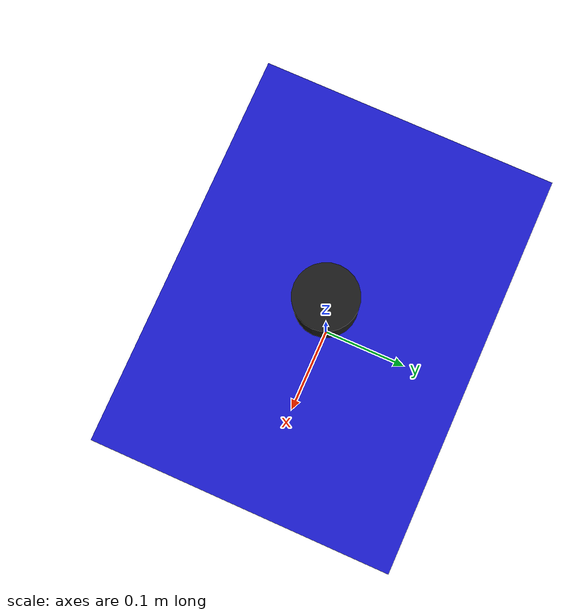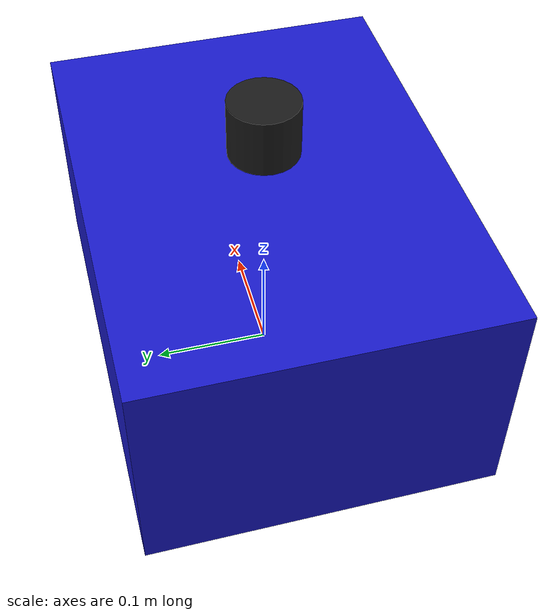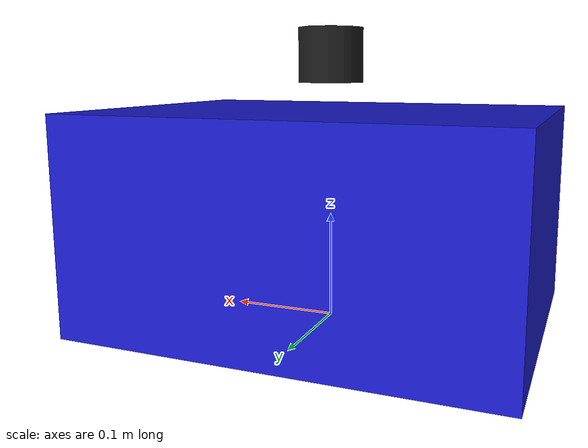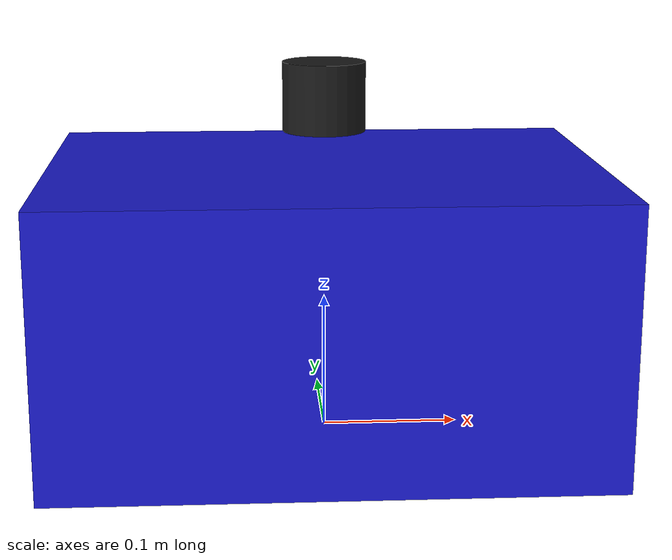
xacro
<?xml version="1.0" encoding="utf-8"?>
<robot name="sentry" xmlns:xacro="http://ros.org/wiki/xacro">

  <xacro:macro name="box_inertia" params="m w h d">
    <inertial>
      <mass value="${m}"/>
      <inertia ixx="${(m/12) * (h*h + d*d)}" ixy="0.0" ixz="0.0"
               iyy="${(m/12) * (w*w + d*d)}" iyz="0.0"
               izz="${(m/12) * (w*w + h*h)}"/>
    </inertial>
  </xacro:macro>

  <link name="base_footprint"/>

  <joint name="base_footprint_joint" type="fixed">
    <origin xyz="0 0 0" rpy="0 0 0" />
    <parent link="base_footprint" />
    <child link="base_link" />
  </joint>

  <link name="base_link">
    <visual>
      <origin xyz="0 0 0.1" rpy="0 0 0"/>
      <geometry>
        <box size="0.4 0.3 0.2"/>
      </geometry>
      <material name="blue">
        <color rgba="0.1 0.1 0.8 1"/>
      </material>
    </visual>
    <collision>
      <origin xyz="0 0 0.1" rpy="0 0 0"/>
      <geometry>
        <box size="0.4 0.3 0.2"/>
      </geometry>
    </collision>
    <xacro:box_inertia m="10.0" w="0.4" h="0.3" d="0.2"/>
  </link>

  <link name="livox_frame">
    <visual>
      <geometry>
        <cylinder radius="0.03" length="0.05"/>
      </geometry>
      <material name="black">
        <color rgba="0.1 0.1 0.1 1"/>
      </material>
    </visual>
    <collision>
      <geometry>
        <cylinder radius="0.03" length="0.05"/>
      </geometry>
    </collision>
    <xacro:box_inertia m="0.5" w="0.05" h="0.05" d="0.05"/>
  </link>

  <joint name="lidar_joint" type="fixed">
    <origin xyz="0 0 0.25" rpy="0 0 0" />
    <parent link="base_link" />
    <child link="livox_frame" />
  </joint>

  <gazebo>
    <plugin filename="ignition-gazebo-velocity-control-system" name="ignition::gazebo::systems::VelocityControl">
      <link_name>base_footprint</link_name>
      <link_name>base_link</link_name>
      <topic>/cmd_vel</topic>
    </plugin>

    <plugin filename="ignition-gazebo-odometry-publisher-system" name="ignition::gazebo::systems::OdometryPublisher">
      <odom_frame>odom</odom_frame>
      <robot_base_frame>base_footprint</robot_base_frame>
      <odom_topic>/odom</odom_topic>
      <tf_topic>/tf</tf_topic>
      <dimensions>2</dimensions>
      <odom_publish_frequency>50</odom_publish_frequency>
    </plugin>
  </gazebo>

  <gazebo reference="livox_frame">
    <sensor name="lidar" type="gpu_lidar">
      <ignition_frame_id>livox_frame</ignition_frame_id>
      <pose>0 0 0 0 0 0</pose>
      <topic>/scan</topic>
      <update_rate>10</update_rate>
      <ray>
        <scan>
          <horizontal>
            <samples>360</samples>
            <resolution>1</resolution>
            <min_angle>-3.14159</min_angle>
            <max_angle>3.14159</max_angle>
          </horizontal>
        </scan>
        <range>
          <min>0.15</min>
          <max>12.0</max>
          <resolution>0.01</resolution>
        </range>
      </ray>
      <always_on>1</always_on>
      <visualize>true</visualize>
    </sensor>
  </gazebo>

</robot>
